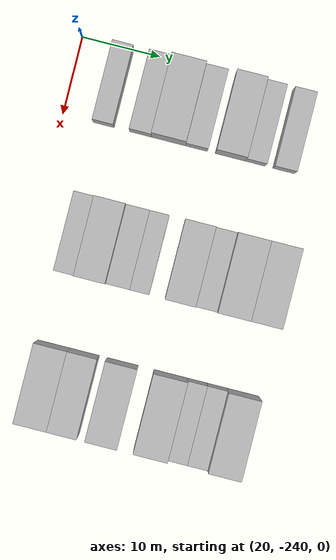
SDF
<sdf version="1.6">
 <world name="default">
  <model name="building_1">
   <static>1</static>
   <pose>25.0000 -234.6783 0 0.000000 0.000000 0.000000</pose>
   <link name="link">
    <pose>0 0 3.00 0 0 0</pose>
    <collision name="collision"><geometry><box><size>10.0000 2.6435 6.0000</size></box></geometry></collision>
    <visual name="visual">
     <cast_shadows>0</cast_shadows>
     <geometry><box><size>10.0000 2.6435 6.0000</size></box></geometry>
     <material>
      <script>
       <uri>model://HANNAS_wall/materials/scripts</uri>
       <uri>model://HANNAS_wall/materials/textures</uri>
       <name>vrc/HANNAS_wall</name>
      </script>
     </material>
    </visual>
   </link>
  </model>
  <model name="building_2">
   <static>1</static>
   <pose>25.0000 -229.9542 0 0.000000 0.000000 0.000000</pose>
   <link name="link">
    <pose>0 0 3.00 0 0 0</pose>
    <collision name="collision"><geometry><box><size>10.0000 2.8046 6.0000</size></box></geometry></collision>
    <visual name="visual">
     <cast_shadows>0</cast_shadows>
     <geometry><box><size>10.0000 2.8046 6.0000</size></box></geometry>
     <material>
      <script>
       <uri>model://HANNAS_wall/materials/scripts</uri>
       <uri>model://HANNAS_wall/materials/textures</uri>
       <name>vrc/HANNAS_wall</name>
      </script>
     </material>
    </visual>
   </link>
  </model>
  <model name="building_3">
   <static>1</static>
   <pose>25.0000 -226.3536 0 0.000000 0.000000 0.000000</pose>
   <link name="link">
    <pose>0 0 4.50 0 0 0</pose>
    <collision name="collision"><geometry><box><size>10.0000 4.3965 9.0000</size></box></geometry></collision>
    <visual name="visual">
     <cast_shadows>0</cast_shadows>
     <geometry><box><size>10.0000 4.3965 9.0000</size></box></geometry>
     <material>
      <script>
       <uri>model://HANNAS_wall/materials/scripts</uri>
       <uri>model://HANNAS_wall/materials/textures</uri>
       <name>vrc/HANNAS_wall</name>
      </script>
     </material>
    </visual>
   </link>
  </model>
  <model name="building_4">
   <static>1</static>
   <pose>25.0000 -222.7586 0 0.000000 0.000000 0.000000</pose>
   <link name="link">
    <pose>0 0 3.00 0 0 0</pose>
    <collision name="collision"><geometry><box><size>10.0000 2.7936 6.0000</size></box></geometry></collision>
    <visual name="visual">
     <cast_shadows>0</cast_shadows>
     <geometry><box><size>10.0000 2.7936 6.0000</size></box></geometry>
     <material>
      <script>
       <uri>model://HANNAS_wall/materials/scripts</uri>
       <uri>model://HANNAS_wall/materials/textures</uri>
       <name>vrc/HANNAS_wall</name>
      </script>
     </material>
    </visual>
   </link>
  </model>
  <model name="building_5">
   <static>1</static>
   <pose>25.0000 -218.4428 0 0.000000 0.000000 0.000000</pose>
   <link name="link">
    <pose>0 0 4.50 0 0 0</pose>
    <collision name="collision"><geometry><box><size>10.0000 3.8380 9.0000</size></box></geometry></collision>
    <visual name="visual">
     <cast_shadows>0</cast_shadows>
     <geometry><box><size>10.0000 3.8380 9.0000</size></box></geometry>
     <material>
      <script>
       <uri>model://HANNAS_wall/materials/scripts</uri>
       <uri>model://HANNAS_wall/materials/textures</uri>
       <name>vrc/HANNAS_wall</name>
      </script>
     </material>
    </visual>
   </link>
  </model>
  <model name="building_6">
   <static>1</static>
   <pose>25.0000 -215.2362 0 0.000000 0.000000 0.000000</pose>
   <link name="link">
    <pose>0 0 3.00 0 0 0</pose>
    <collision name="collision"><geometry><box><size>10.0000 2.5753 6.0000</size></box></geometry></collision>
    <visual name="visual">
     <cast_shadows>0</cast_shadows>
     <geometry><box><size>10.0000 2.5753 6.0000</size></box></geometry>
     <material>
      <script>
       <uri>model://HANNAS_wall/materials/scripts</uri>
       <uri>model://HANNAS_wall/materials/textures</uri>
       <name>vrc/HANNAS_wall</name>
      </script>
     </material>
    </visual>
   </link>
  </model>
  <model name="building_7">
   <static>1</static>
   <pose>25.0000 -211.5604 0 0.000000 0.000000 0.000000</pose>
   <link name="link">
    <pose>0 0 3.00 0 0 0</pose>
    <collision name="collision"><geometry><box><size>10.0000 2.7763 6.0000</size></box></geometry></collision>
    <visual name="visual">
     <cast_shadows>0</cast_shadows>
     <geometry><box><size>10.0000 2.7763 6.0000</size></box></geometry>
     <material>
      <script>
       <uri>model://HANNAS_wall/materials/scripts</uri>
       <uri>model://HANNAS_wall/materials/textures</uri>
       <name>vrc/HANNAS_wall</name>
      </script>
     </material>
    </visual>
   </link>
  </model>
  <model name="building_116">
   <static>1</static>
   <pose>44.0000 -234.6832 0 0.000000 0.000000 0.000000</pose>
   <link name="link">
    <pose>0 0 3.00 0 0 0</pose>
    <collision name="collision"><geometry><box><size>10.0000 2.6335 6.0000</size></box></geometry></collision>
    <visual name="visual">
     <cast_shadows>0</cast_shadows>
     <geometry><box><size>10.0000 2.6335 6.0000</size></box></geometry>
     <material>
      <script>
       <uri>model://HANNAS_wall/materials/scripts</uri>
       <uri>model://HANNAS_wall/materials/textures</uri>
       <name>vrc/HANNAS_wall</name>
      </script>
     </material>
    </visual>
   </link>
  </model>
  <model name="building_117">
   <static>1</static>
   <pose>44.0000 -231.3911 0 0.000000 0.000000 0.000000</pose>
   <link name="link">
    <pose>0 0 4.50 0 0 0</pose>
    <collision name="collision"><geometry><box><size>10.0000 3.9507 9.0000</size></box></geometry></collision>
    <visual name="visual">
     <cast_shadows>0</cast_shadows>
     <geometry><box><size>10.0000 3.9507 9.0000</size></box></geometry>
     <material>
      <script>
       <uri>model://HANNAS_wall/materials/scripts</uri>
       <uri>model://HANNAS_wall/materials/textures</uri>
       <name>vrc/HANNAS_wall</name>
      </script>
     </material>
    </visual>
   </link>
  </model>
  <model name="building_118">
   <static>1</static>
   <pose>44.0000 -227.9201 0 0.000000 0.000000 0.000000</pose>
   <link name="link">
    <pose>0 0 3.00 0 0 0</pose>
    <collision name="collision"><geometry><box><size>10.0000 2.9914 6.0000</size></box></geometry></collision>
    <visual name="visual">
     <cast_shadows>0</cast_shadows>
     <geometry><box><size>10.0000 2.9914 6.0000</size></box></geometry>
     <material>
      <script>
       <uri>model://HANNAS_wall/materials/scripts</uri>
       <uri>model://HANNAS_wall/materials/textures</uri>
       <name>vrc/HANNAS_wall</name>
      </script>
     </material>
    </visual>
   </link>
  </model>
  <model name="building_119">
   <static>1</static>
   <pose>44.0000 -225.1907 0 0.000000 0.000000 0.000000</pose>
   <link name="link">
    <pose>0 0 3.00 0 0 0</pose>
    <collision name="collision"><geometry><box><size>10.0000 2.4673 6.0000</size></box></geometry></collision>
    <visual name="visual">
     <cast_shadows>0</cast_shadows>
     <geometry><box><size>10.0000 2.4673 6.0000</size></box></geometry>
     <material>
      <script>
       <uri>model://HANNAS_wall/materials/scripts</uri>
       <uri>model://HANNAS_wall/materials/textures</uri>
       <name>vrc/HANNAS_wall</name>
      </script>
     </material>
    </visual>
   </link>
  </model>
  <model name="building_120">
   <static>1</static>
   <pose>44.0000 -220.0449 0 0.000000 0.000000 0.000000</pose>
   <link name="link">
    <pose>0 0 4.50 0 0 0</pose>
    <collision name="collision"><geometry><box><size>10.0000 3.8244 9.0000</size></box></geometry></collision>
    <visual name="visual">
     <cast_shadows>0</cast_shadows>
     <geometry><box><size>10.0000 3.8244 9.0000</size></box></geometry>
     <material>
      <script>
       <uri>model://HANNAS_wall/materials/scripts</uri>
       <uri>model://HANNAS_wall/materials/textures</uri>
       <name>vrc/HANNAS_wall</name>
      </script>
     </material>
    </visual>
   </link>
  </model>
  <model name="building_121">
   <static>1</static>
   <pose>44.0000 -216.7589 0 0.000000 0.000000 0.000000</pose>
   <link name="link">
    <pose>0 0 3.00 0 0 0</pose>
    <collision name="collision"><geometry><box><size>10.0000 2.7475 6.0000</size></box></geometry></collision>
    <visual name="visual">
     <cast_shadows>0</cast_shadows>
     <geometry><box><size>10.0000 2.7475 6.0000</size></box></geometry>
     <material>
      <script>
       <uri>model://HANNAS_wall/materials/scripts</uri>
       <uri>model://HANNAS_wall/materials/textures</uri>
       <name>vrc/HANNAS_wall</name>
      </script>
     </material>
    </visual>
   </link>
  </model>
  <model name="building_122">
   <static>1</static>
   <pose>44.0000 -213.3212 0 0.000000 0.000000 0.000000</pose>
   <link name="link">
    <pose>0 0 4.50 0 0 0</pose>
    <collision name="collision"><geometry><box><size>10.0000 4.1279 9.0000</size></box></geometry></collision>
    <visual name="visual">
     <cast_shadows>0</cast_shadows>
     <geometry><box><size>10.0000 4.1279 9.0000</size></box></geometry>
     <material>
      <script>
       <uri>model://HANNAS_wall/materials/scripts</uri>
       <uri>model://HANNAS_wall/materials/textures</uri>
       <name>vrc/HANNAS_wall</name>
      </script>
     </material>
    </visual>
   </link>
  </model>
  <model name="building_123">
   <static>1</static>
   <pose>44.0000 -209.2913 0 0.000000 0.000000 0.000000</pose>
   <link name="link">
    <pose>0 0 4.50 0 0 0</pose>
    <collision name="collision"><geometry><box><size>10.0000 3.9317 9.0000</size></box></geometry></collision>
    <visual name="visual">
     <cast_shadows>0</cast_shadows>
     <geometry><box><size>10.0000 3.9317 9.0000</size></box></geometry>
     <material>
      <script>
       <uri>model://HANNAS_wall/materials/scripts</uri>
       <uri>model://HANNAS_wall/materials/textures</uri>
       <name>vrc/HANNAS_wall</name>
      </script>
     </material>
    </visual>
   </link>
  </model>
  <model name="building_235">
   <static>1</static>
   <pose>63.0000 -233.9203 0 0.000000 0.000000 0.000000</pose>
   <link name="link">
    <pose>0 0 4.50 0 0 0</pose>
    <collision name="collision"><geometry><box><size>10.0000 4.1594 9.0000</size></box></geometry></collision>
    <visual name="visual">
     <cast_shadows>0</cast_shadows>
     <geometry><box><size>10.0000 4.1594 9.0000</size></box></geometry>
     <material>
      <script>
       <uri>model://HANNAS_wall/materials/scripts</uri>
       <uri>model://HANNAS_wall/materials/textures</uri>
       <name>vrc/HANNAS_wall</name>
      </script>
     </material>
    </visual>
   </link>
  </model>
  <model name="building_236">
   <static>1</static>
   <pose>63.0000 -229.9653 0 0.000000 0.000000 0.000000</pose>
   <link name="link">
    <pose>0 0 4.50 0 0 0</pose>
    <collision name="collision"><geometry><box><size>10.0000 3.7507 9.0000</size></box></geometry></collision>
    <visual name="visual">
     <cast_shadows>0</cast_shadows>
     <geometry><box><size>10.0000 3.7507 9.0000</size></box></geometry>
     <material>
      <script>
       <uri>model://HANNAS_wall/materials/scripts</uri>
       <uri>model://HANNAS_wall/materials/textures</uri>
       <name>vrc/HANNAS_wall</name>
      </script>
     </material>
    </visual>
   </link>
  </model>
  <model name="building_237">
   <static>1</static>
   <pose>63.0000 -225.0822 0 0.000000 0.000000 0.000000</pose>
   <link name="link">
    <pose>0 0 4.50 0 0 0</pose>
    <collision name="collision"><geometry><box><size>10.0000 4.0155 9.0000</size></box></geometry></collision>
    <visual name="visual">
     <cast_shadows>0</cast_shadows>
     <geometry><box><size>10.0000 4.0155 9.0000</size></box></geometry>
     <material>
      <script>
       <uri>model://HANNAS_wall/materials/scripts</uri>
       <uri>model://HANNAS_wall/materials/textures</uri>
       <name>vrc/HANNAS_wall</name>
      </script>
     </material>
    </visual>
   </link>
  </model>
  <model name="building_238">
   <static>1</static>
   <pose>63.0000 -218.9262 0 0.000000 0.000000 0.000000</pose>
   <link name="link">
    <pose>0 0 4.50 0 0 0</pose>
    <collision name="collision"><geometry><box><size>10.0000 4.2964 9.0000</size></box></geometry></collision>
    <visual name="visual">
     <cast_shadows>0</cast_shadows>
     <geometry><box><size>10.0000 4.2964 9.0000</size></box></geometry>
     <material>
      <script>
       <uri>model://HANNAS_wall/materials/scripts</uri>
       <uri>model://HANNAS_wall/materials/textures</uri>
       <name>vrc/HANNAS_wall</name>
      </script>
     </material>
    </visual>
   </link>
  </model>
  <model name="building_239">
   <static>1</static>
   <pose>63.0000 -215.5335 0 0.000000 0.000000 0.000000</pose>
   <link name="link">
    <pose>0 0 3.00 0 0 0</pose>
    <collision name="collision"><geometry><box><size>10.0000 2.4891 6.0000</size></box></geometry></collision>
    <visual name="visual">
     <cast_shadows>0</cast_shadows>
     <geometry><box><size>10.0000 2.4891 6.0000</size></box></geometry>
     <material>
      <script>
       <uri>model://HANNAS_wall/materials/scripts</uri>
       <uri>model://HANNAS_wall/materials/textures</uri>
       <name>vrc/HANNAS_wall</name>
      </script>
     </material>
    </visual>
   </link>
  </model>
  <model name="building_240">
   <static>1</static>
   <pose>63.0000 -213.0070 0 0.000000 0.000000 0.000000</pose>
   <link name="link">
    <pose>0 0 3.00 0 0 0</pose>
    <collision name="collision"><geometry><box><size>10.0000 2.5639 6.0000</size></box></geometry></collision>
    <visual name="visual">
     <cast_shadows>0</cast_shadows>
     <geometry><box><size>10.0000 2.5639 6.0000</size></box></geometry>
     <material>
      <script>
       <uri>model://HANNAS_wall/materials/scripts</uri>
       <uri>model://HANNAS_wall/materials/textures</uri>
       <name>vrc/HANNAS_wall</name>
      </script>
     </material>
    </visual>
   </link>
  </model>
  <model name="building_241">
   <static>1</static>
   <pose>63.0000 -209.6565 0 0.000000 0.000000 0.000000</pose>
   <link name="link">
    <pose>0 0 4.50 0 0 0</pose>
    <collision name="collision"><geometry><box><size>10.0000 4.1371 9.0000</size></box></geometry></collision>
    <visual name="visual">
     <cast_shadows>0</cast_shadows>
     <geometry><box><size>10.0000 4.1371 9.0000</size></box></geometry>
     <material>
      <script>
       <uri>model://HANNAS_wall/materials/scripts</uri>
       <uri>model://HANNAS_wall/materials/textures</uri>
       <name>vrc/HANNAS_wall</name>
      </script>
     </material>
    </visual>
   </link>
  </model>
 </world>
</sdf>
